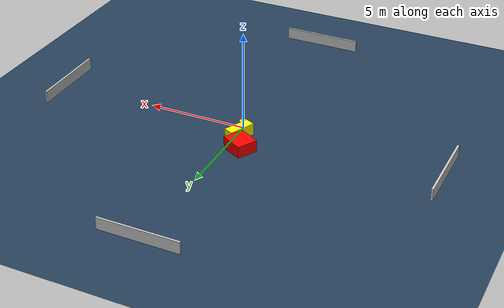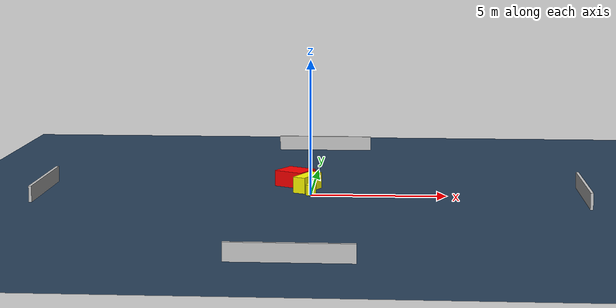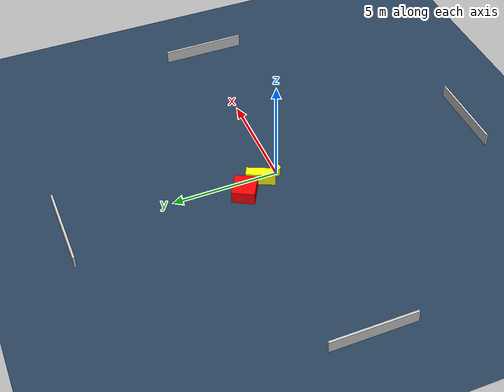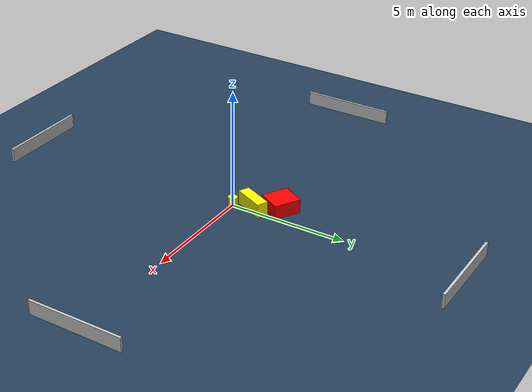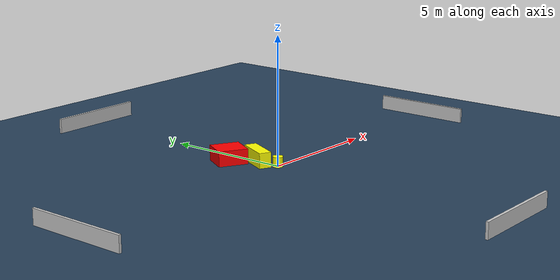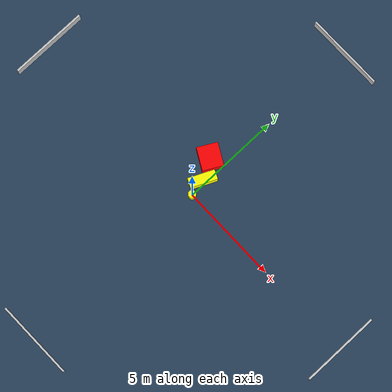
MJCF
<?xml version="1.0" ?>
<mujoco model="generated_environment">
  <option timestep="0.01" integrator="RK4" cone="elliptic"/>
  <default>
    <geom density="1"/>
  </default>
  <asset>
    <texture builtin="gradient" height="3072" name="skybox" rgb1="0.3 0.5 0.7" rgb2="0 0 0" type="skybox" width="512"/>
    <texture builtin="checker" height="300" name="groundplane" rgb1="0.2 0.3 0.4" rgb2="0.1 0.2 0.3" type="2d" width="300"/>
    <material name="groundplane" reflectance="0.2" texrepeat="5 5" texture="groundplane"/>
  </asset>
  <worldbody>
    <light dir="0 0 -1" directional="true" pos="0 0 1.5"/>
    <geom condim="3" friction="0.5 0.005 0.001" material="groundplane" name="floor" pos="0 0 0" size="0 0 0.05" type="plane"/>
    <body name="walls">
      <geom name="wall_1" condim="4" pos="-10.0 0.0 0.3" rgba="0.800000011920929 0.800000011920929 0.800000011920929 1.0" size="0.05 2.0 0.3" type="box"/>
      <geom name="wall_2" condim="4" pos="10.0 0.0 0.3" rgba="0.800000011920929 0.800000011920929 0.800000011920929 1.0" size="0.05 2.0 0.3" type="box"/>
      <geom name="wall_3" condim="4" pos="0.0 -10.0 0.3" rgba="0.800000011920929 0.800000011920929 0.800000011920929 1.0" size="2.0 0.05 0.3" type="box"/>
      <geom name="wall_4" condim="4" pos="0.0 10.0 0.3" rgba="0.800000011920929 0.800000011920929 0.800000011920929 1.0" size="2.0 0.05 0.3" type="box"/>
    </body>
    <body name="robot">
      <joint name="joint_x" type="slide" pos="0 0 0" axis="1 0 0"/>
      <joint name="joint_y" type="slide" pos="0 0 0" axis="0 1 0"/>
      <geom name="robot" type="cylinder" pos="0.0 0.0 0.2" size="0.2 0.2 0.0" mass="5.0" friction="1.0 0.005 0.0001" condim="4" rgba="1.0 1.0 0.0 1.0"/>
    </body>
    <body name="obstacle_1_movable">
      <geom name="obstacle_1_movable" condim="4" pos="-0.17891469723030134 0.8422409305988546 0.3" euler="0 0 64.92828463836713" friction="0.0 0.005 0.001" rgba="1.0 1.0 0.0 1.0" size="0.6785136972189763 0.24363127712721294 0.3" type="box" mass="0.1"/>
      <joint type="free"/>
    </body>
    <body name="obstacle_2_static">
      <geom name="obstacle_2_static" condim="4" pos="-0.7112721569675691 1.8304729596989677 0.3" euler="0 0 330.95956556701583" friction="0.0 0.005 0.001" rgba="1.0 0.0 0.0 1.0" size="0.5815817723738659 0.5289180319171933 0.3" type="box"/>
    </body>
  </worldbody>
  <actuator>
    <motor name="actuator_x" joint="joint_x" gear="1" ctrlrange="-1 1"/>
    <motor name="actuator_y" joint="joint_y" gear="1" ctrlrange="-1 1"/>
  </actuator>
</mujoco>
